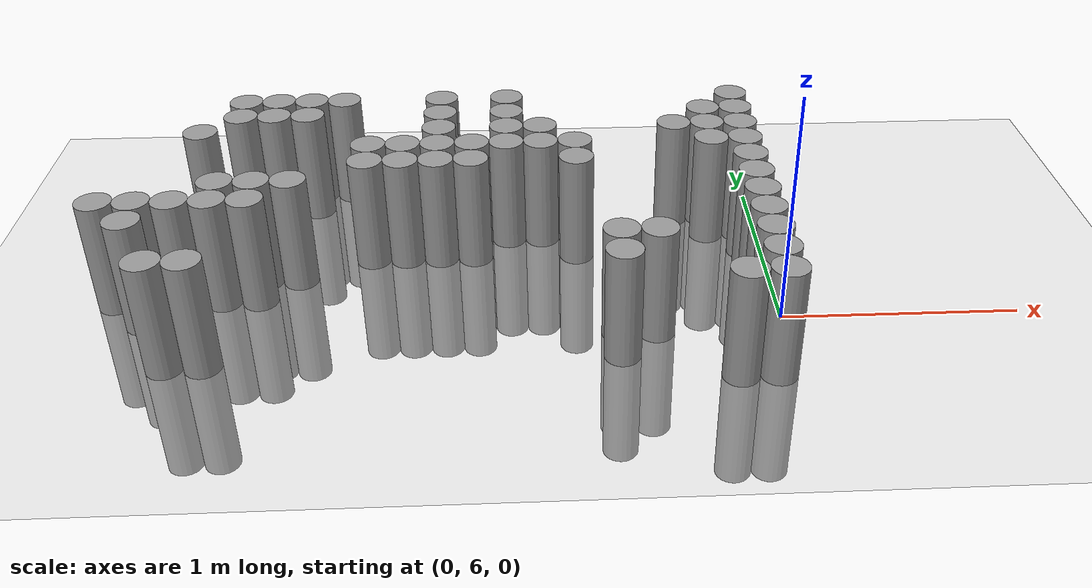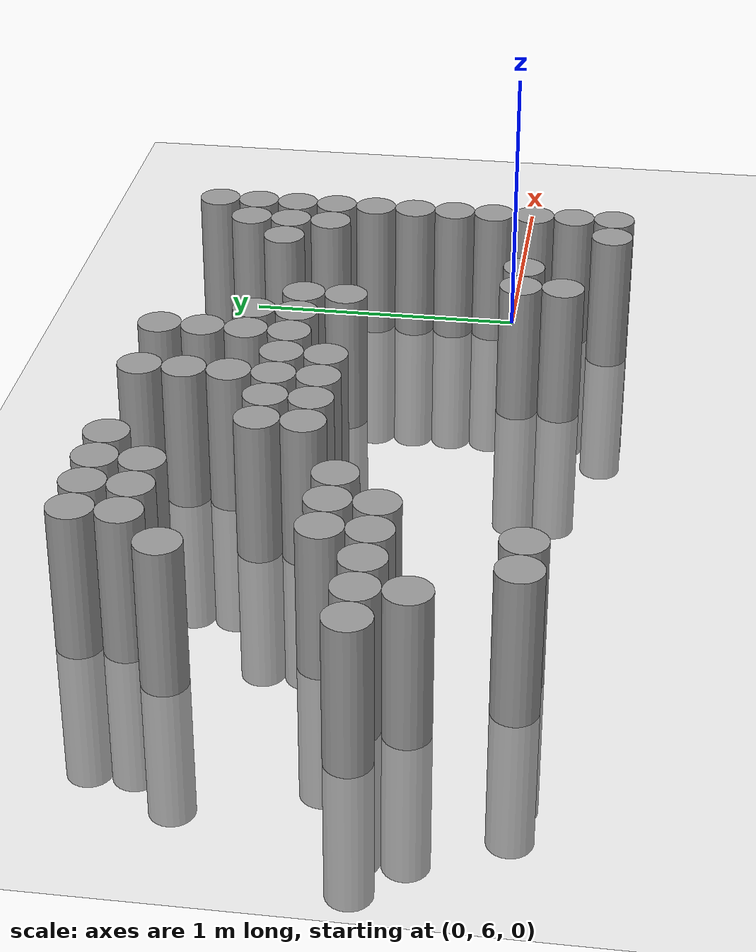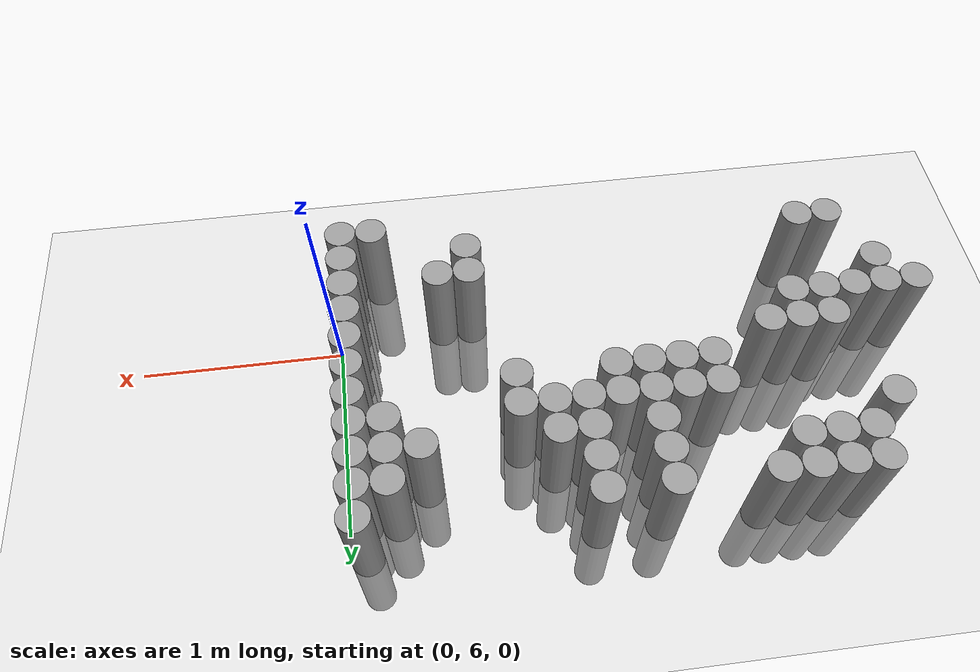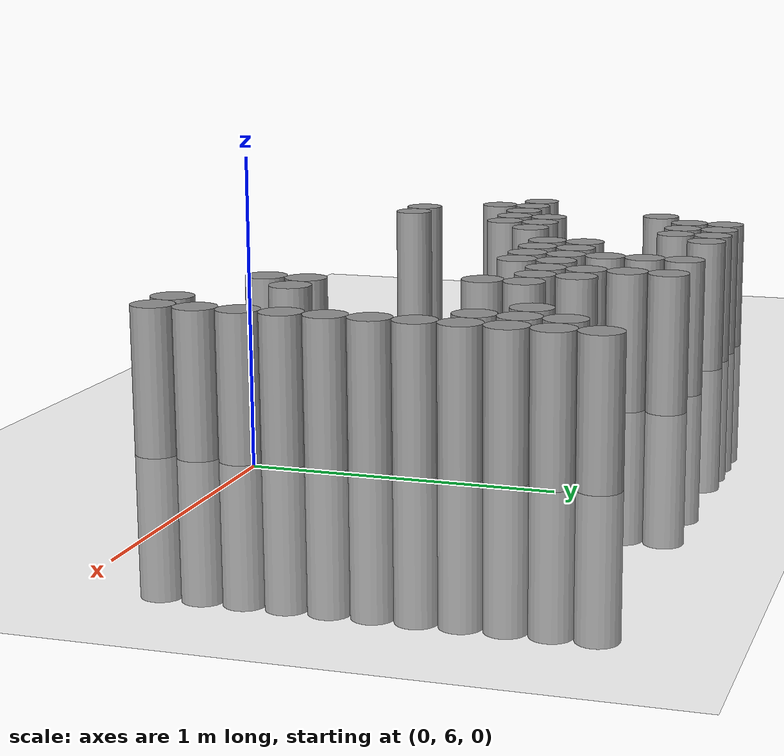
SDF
<sdf version="1.6">
 <world name="default">
  <model name="ground_plane">
   <static>1</static>
   <static>1</static>
   <link name="link">
    <collision name="collision">
     <geometry><plane><normal>0 0 1</normal><size>100 100</size></plane></geometry>
     <surface><friction><ode><mu>100</mu><mu2>50</mu2></ode></friction></surface>
    </collision>
    <visual name="visual">
     <cast_shadows>0</cast_shadows>
     <geometry><plane><normal>0 0 1</normal><size>100 100</size></plane></geometry>
     <material>
      <script><uri>file://media/materials/scripts/gazebo.material</uri><name>Gazebo/Grey</name></script>
     </material>
    </visual>
   </link>
  </model>
  <model name="unit_cylinder_160">
   <static>1</static>
   <pose>-2.775000 6.225000 0.000000 0.000000 0.000000 0.000000</pose>
   <link name="link">
    <inertial>
     <mass>1</mass>
     <inertia><ixx>0.145833</ixx><ixy>0</ixy><ixz>0</ixz><iyy>0.145833</iyy><iyz>0</iyz><izz>0.125</izz></inertia>
    </inertial>
    <collision name="collision">
     <geometry><cylinder><radius>0.075000</radius><length>1</length></cylinder></geometry>
    </collision>
    <visual name="visual">
     <geometry><cylinder><radius>0.075000</radius><length>1</length></cylinder></geometry>
     <material>
      <script><name>Gazebo/Grey</name><uri>file://media/materials/scripts/gazebo.material</uri></script>
     </material>
    </visual>
   </link>
  </model>
  <model name="unit_cylinder_161">
   <static>1</static>
   <pose>-2.625000 6.075000 0.000000 0.000000 0.000000 0.000000</pose>
   <link name="link">
    <inertial>
     <mass>1</mass>
     <inertia><ixx>0.145833</ixx><ixy>0</ixy><ixz>0</ixz><iyy>0.145833</iyy><iyz>0</iyz><izz>0.125</izz></inertia>
    </inertial>
    <collision name="collision">
     <geometry><cylinder><radius>0.075000</radius><length>1</length></cylinder></geometry>
    </collision>
    <visual name="visual">
     <geometry><cylinder><radius>0.075000</radius><length>1</length></cylinder></geometry>
     <material>
      <script><name>Gazebo/Grey</name><uri>file://media/materials/scripts/gazebo.material</uri></script>
     </material>
    </visual>
   </link>
  </model>
  <model name="unit_cylinder_162">
   <static>1</static>
   <pose>-2.625000 6.225000 0.000000 0.000000 0.000000 0.000000</pose>
   <link name="link">
    <inertial>
     <mass>1</mass>
     <inertia><ixx>0.145833</ixx><ixy>0</ixy><ixz>0</ixz><iyy>0.145833</iyy><iyz>0</iyz><izz>0.125</izz></inertia>
    </inertial>
    <collision name="collision">
     <geometry><cylinder><radius>0.075000</radius><length>1</length></cylinder></geometry>
    </collision>
    <visual name="visual">
     <geometry><cylinder><radius>0.075000</radius><length>1</length></cylinder></geometry>
     <material>
      <script><name>Gazebo/Grey</name><uri>file://media/materials/scripts/gazebo.material</uri></script>
     </material>
    </visual>
   </link>
  </model>
  <model name="unit_cylinder_164">
   <static>1</static>
   <pose>-2.475000 5.775000 0.000000 0.000000 0.000000 0.000000</pose>
   <link name="link">
    <inertial>
     <mass>1</mass>
     <inertia><ixx>0.145833</ixx><ixy>0</ixy><ixz>0</ixz><iyy>0.145833</iyy><iyz>0</iyz><izz>0.125</izz></inertia>
    </inertial>
    <collision name="collision">
     <geometry><cylinder><radius>0.075000</radius><length>1</length></cylinder></geometry>
    </collision>
    <visual name="visual">
     <geometry><cylinder><radius>0.075000</radius><length>1</length></cylinder></geometry>
     <material>
      <script><name>Gazebo/Grey</name><uri>file://media/materials/scripts/gazebo.material</uri></script>
     </material>
    </visual>
   </link>
  </model>
  <model name="unit_cylinder_165">
   <static>1</static>
   <pose>-2.475000 6.225000 0.000000 0.000000 0.000000 0.000000</pose>
   <link name="link">
    <inertial>
     <mass>1</mass>
     <inertia><ixx>0.145833</ixx><ixy>0</ixy><ixz>0</ixz><iyy>0.145833</iyy><iyz>0</iyz><izz>0.125</izz></inertia>
    </inertial>
    <collision name="collision">
     <geometry><cylinder><radius>0.075000</radius><length>1</length></cylinder></geometry>
    </collision>
    <visual name="visual">
     <geometry><cylinder><radius>0.075000</radius><length>1</length></cylinder></geometry>
     <material>
      <script><name>Gazebo/Grey</name><uri>file://media/materials/scripts/gazebo.material</uri></script>
     </material>
    </visual>
   </link>
  </model>
  <model name="unit_cylinder_166">
   <static>1</static>
   <pose>-2.475000 6.825000 0.000000 0.000000 0.000000 0.000000</pose>
   <link name="link">
    <inertial>
     <mass>1</mass>
     <inertia><ixx>0.145833</ixx><ixy>0</ixy><ixz>0</ixz><iyy>0.145833</iyy><iyz>0</iyz><izz>0.125</izz></inertia>
    </inertial>
    <collision name="collision">
     <geometry><cylinder><radius>0.075000</radius><length>1</length></cylinder></geometry>
    </collision>
    <visual name="visual">
     <geometry><cylinder><radius>0.075000</radius><length>1</length></cylinder></geometry>
     <material>
      <script><name>Gazebo/Grey</name><uri>file://media/materials/scripts/gazebo.material</uri></script>
     </material>
    </visual>
   </link>
  </model>
  <model name="unit_cylinder_167">
   <static>1</static>
   <pose>-2.325000 5.775000 0.000000 0.000000 0.000000 0.000000</pose>
   <link name="link">
    <inertial>
     <mass>1</mass>
     <inertia><ixx>0.145833</ixx><ixy>0</ixy><ixz>0</ixz><iyy>0.145833</iyy><iyz>0</iyz><izz>0.125</izz></inertia>
    </inertial>
    <collision name="collision">
     <geometry><cylinder><radius>0.075000</radius><length>1</length></cylinder></geometry>
    </collision>
    <visual name="visual">
     <geometry><cylinder><radius>0.075000</radius><length>1</length></cylinder></geometry>
     <material>
      <script><name>Gazebo/Grey</name><uri>file://media/materials/scripts/gazebo.material</uri></script>
     </material>
    </visual>
   </link>
  </model>
  <model name="unit_cylinder_168">
   <static>1</static>
   <pose>-2.325000 6.225000 0.000000 0.000000 0.000000 0.000000</pose>
   <link name="link">
    <inertial>
     <mass>1</mass>
     <inertia><ixx>0.145833</ixx><ixy>0</ixy><ixz>0</ixz><iyy>0.145833</iyy><iyz>0</iyz><izz>0.125</izz></inertia>
    </inertial>
    <collision name="collision">
     <geometry><cylinder><radius>0.075000</radius><length>1</length></cylinder></geometry>
    </collision>
    <visual name="visual">
     <geometry><cylinder><radius>0.075000</radius><length>1</length></cylinder></geometry>
     <material>
      <script><name>Gazebo/Grey</name><uri>file://media/materials/scripts/gazebo.material</uri></script>
     </material>
    </visual>
   </link>
  </model>
  <model name="unit_cylinder_169">
   <static>1</static>
   <pose>-2.325000 6.375000 0.000000 0.000000 0.000000 0.000000</pose>
   <link name="link">
    <inertial>
     <mass>1</mass>
     <inertia><ixx>0.145833</ixx><ixy>0</ixy><ixz>0</ixz><iyy>0.145833</iyy><iyz>0</iyz><izz>0.125</izz></inertia>
    </inertial>
    <collision name="collision">
     <geometry><cylinder><radius>0.075000</radius><length>1</length></cylinder></geometry>
    </collision>
    <visual name="visual">
     <geometry><cylinder><radius>0.075000</radius><length>1</length></cylinder></geometry>
     <material>
      <script><name>Gazebo/Grey</name><uri>file://media/materials/scripts/gazebo.material</uri></script>
     </material>
    </visual>
   </link>
  </model>
  <model name="unit_cylinder_170">
   <static>1</static>
   <pose>-2.325000 6.975000 0.000000 0.000000 0.000000 0.000000</pose>
   <link name="link">
    <inertial>
     <mass>1</mass>
     <inertia><ixx>0.145833</ixx><ixy>0</ixy><ixz>0</ixz><iyy>0.145833</iyy><iyz>0</iyz><izz>0.125</izz></inertia>
    </inertial>
    <collision name="collision">
     <geometry><cylinder><radius>0.075000</radius><length>1</length></cylinder></geometry>
    </collision>
    <visual name="visual">
     <geometry><cylinder><radius>0.075000</radius><length>1</length></cylinder></geometry>
     <material>
      <script><name>Gazebo/Grey</name><uri>file://media/materials/scripts/gazebo.material</uri></script>
     </material>
    </visual>
   </link>
  </model>
  <model name="unit_cylinder_171">
   <static>1</static>
   <pose>-2.325000 7.125000 0.000000 0.000000 0.000000 0.000000</pose>
   <link name="link">
    <inertial>
     <mass>1</mass>
     <inertia><ixx>0.145833</ixx><ixy>0</ixy><ixz>0</ixz><iyy>0.145833</iyy><iyz>0</iyz><izz>0.125</izz></inertia>
    </inertial>
    <collision name="collision">
     <geometry><cylinder><radius>0.075000</radius><length>1</length></cylinder></geometry>
    </collision>
    <visual name="visual">
     <geometry><cylinder><radius>0.075000</radius><length>1</length></cylinder></geometry>
     <material>
      <script><name>Gazebo/Grey</name><uri>file://media/materials/scripts/gazebo.material</uri></script>
     </material>
    </visual>
   </link>
  </model>
  <model name="unit_cylinder_173">
   <static>1</static>
   <pose>-2.175000 6.225000 0.000000 0.000000 0.000000 0.000000</pose>
   <link name="link">
    <inertial>
     <mass>1</mass>
     <inertia><ixx>0.145833</ixx><ixy>0</ixy><ixz>0</ixz><iyy>0.145833</iyy><iyz>0</iyz><izz>0.125</izz></inertia>
    </inertial>
    <collision name="collision">
     <geometry><cylinder><radius>0.075000</radius><length>1</length></cylinder></geometry>
    </collision>
    <visual name="visual">
     <geometry><cylinder><radius>0.075000</radius><length>1</length></cylinder></geometry>
     <material>
      <script><name>Gazebo/Grey</name><uri>file://media/materials/scripts/gazebo.material</uri></script>
     </material>
    </visual>
   </link>
  </model>
  <model name="unit_cylinder_174">
   <static>1</static>
   <pose>-2.175000 6.375000 0.000000 0.000000 0.000000 0.000000</pose>
   <link name="link">
    <inertial>
     <mass>1</mass>
     <inertia><ixx>0.145833</ixx><ixy>0</ixy><ixz>0</ixz><iyy>0.145833</iyy><iyz>0</iyz><izz>0.125</izz></inertia>
    </inertial>
    <collision name="collision">
     <geometry><cylinder><radius>0.075000</radius><length>1</length></cylinder></geometry>
    </collision>
    <visual name="visual">
     <geometry><cylinder><radius>0.075000</radius><length>1</length></cylinder></geometry>
     <material>
      <script><name>Gazebo/Grey</name><uri>file://media/materials/scripts/gazebo.material</uri></script>
     </material>
    </visual>
   </link>
  </model>
  <model name="unit_cylinder_175">
   <static>1</static>
   <pose>-2.175000 6.975000 0.000000 0.000000 0.000000 0.000000</pose>
   <link name="link">
    <inertial>
     <mass>1</mass>
     <inertia><ixx>0.145833</ixx><ixy>0</ixy><ixz>0</ixz><iyy>0.145833</iyy><iyz>0</iyz><izz>0.125</izz></inertia>
    </inertial>
    <collision name="collision">
     <geometry><cylinder><radius>0.075000</radius><length>1</length></cylinder></geometry>
    </collision>
    <visual name="visual">
     <geometry><cylinder><radius>0.075000</radius><length>1</length></cylinder></geometry>
     <material>
      <script><name>Gazebo/Grey</name><uri>file://media/materials/scripts/gazebo.material</uri></script>
     </material>
    </visual>
   </link>
  </model>
  <model name="unit_cylinder_176">
   <static>1</static>
   <pose>-2.175000 7.125000 0.000000 0.000000 0.000000 0.000000</pose>
   <link name="link">
    <inertial>
     <mass>1</mass>
     <inertia><ixx>0.145833</ixx><ixy>0</ixy><ixz>0</ixz><iyy>0.145833</iyy><iyz>0</iyz><izz>0.125</izz></inertia>
    </inertial>
    <collision name="collision">
     <geometry><cylinder><radius>0.075000</radius><length>1</length></cylinder></geometry>
    </collision>
    <visual name="visual">
     <geometry><cylinder><radius>0.075000</radius><length>1</length></cylinder></geometry>
     <material>
      <script><name>Gazebo/Grey</name><uri>file://media/materials/scripts/gazebo.material</uri></script>
     </material>
    </visual>
   </link>
  </model>
  <model name="unit_cylinder_178">
   <static>1</static>
   <pose>-2.025000 6.375000 0.000000 0.000000 0.000000 0.000000</pose>
   <link name="link">
    <inertial>
     <mass>1</mass>
     <inertia><ixx>0.145833</ixx><ixy>0</ixy><ixz>0</ixz><iyy>0.145833</iyy><iyz>0</iyz><izz>0.125</izz></inertia>
    </inertial>
    <collision name="collision">
     <geometry><cylinder><radius>0.075000</radius><length>1</length></cylinder></geometry>
    </collision>
    <visual name="visual">
     <geometry><cylinder><radius>0.075000</radius><length>1</length></cylinder></geometry>
     <material>
      <script><name>Gazebo/Grey</name><uri>file://media/materials/scripts/gazebo.material</uri></script>
     </material>
    </visual>
   </link>
  </model>
  <model name="unit_cylinder_179">
   <static>1</static>
   <pose>-2.025000 6.975000 0.000000 0.000000 0.000000 0.000000</pose>
   <link name="link">
    <inertial>
     <mass>1</mass>
     <inertia><ixx>0.145833</ixx><ixy>0</ixy><ixz>0</ixz><iyy>0.145833</iyy><iyz>0</iyz><izz>0.125</izz></inertia>
    </inertial>
    <collision name="collision">
     <geometry><cylinder><radius>0.075000</radius><length>1</length></cylinder></geometry>
    </collision>
    <visual name="visual">
     <geometry><cylinder><radius>0.075000</radius><length>1</length></cylinder></geometry>
     <material>
      <script><name>Gazebo/Grey</name><uri>file://media/materials/scripts/gazebo.material</uri></script>
     </material>
    </visual>
   </link>
  </model>
  <model name="unit_cylinder_180">
   <static>1</static>
   <pose>-2.025000 7.125000 0.000000 0.000000 0.000000 0.000000</pose>
   <link name="link">
    <inertial>
     <mass>1</mass>
     <inertia><ixx>0.145833</ixx><ixy>0</ixy><ixz>0</ixz><iyy>0.145833</iyy><iyz>0</iyz><izz>0.125</izz></inertia>
    </inertial>
    <collision name="collision">
     <geometry><cylinder><radius>0.075000</radius><length>1</length></cylinder></geometry>
    </collision>
    <visual name="visual">
     <geometry><cylinder><radius>0.075000</radius><length>1</length></cylinder></geometry>
     <material>
      <script><name>Gazebo/Grey</name><uri>file://media/materials/scripts/gazebo.material</uri></script>
     </material>
    </visual>
   </link>
  </model>
  <model name="unit_cylinder_184">
   <static>1</static>
   <pose>-1.875000 7.125000 0.000000 0.000000 0.000000 0.000000</pose>
   <link name="link">
    <inertial>
     <mass>1</mass>
     <inertia><ixx>0.145833</ixx><ixy>0</ixy><ixz>0</ixz><iyy>0.145833</iyy><iyz>0</iyz><izz>0.125</izz></inertia>
    </inertial>
    <collision name="collision">
     <geometry><cylinder><radius>0.075000</radius><length>1</length></cylinder></geometry>
    </collision>
    <visual name="visual">
     <geometry><cylinder><radius>0.075000</radius><length>1</length></cylinder></geometry>
     <material>
      <script><name>Gazebo/Grey</name><uri>file://media/materials/scripts/gazebo.material</uri></script>
     </material>
    </visual>
   </link>
  </model>
  <model name="unit_cylinder_188">
   <static>1</static>
   <pose>-1.725000 6.525000 0.000000 0.000000 0.000000 0.000000</pose>
   <link name="link">
    <inertial>
     <mass>1</mass>
     <inertia><ixx>0.145833</ixx><ixy>0</ixy><ixz>0</ixz><iyy>0.145833</iyy><iyz>0</iyz><izz>0.125</izz></inertia>
    </inertial>
    <collision name="collision">
     <geometry><cylinder><radius>0.075000</radius><length>1</length></cylinder></geometry>
    </collision>
    <visual name="visual">
     <geometry><cylinder><radius>0.075000</radius><length>1</length></cylinder></geometry>
     <material>
      <script><name>Gazebo/Grey</name><uri>file://media/materials/scripts/gazebo.material</uri></script>
     </material>
    </visual>
   </link>
  </model>
  <model name="unit_cylinder_189">
   <static>1</static>
   <pose>-1.725000 6.675000 0.000000 0.000000 0.000000 0.000000</pose>
   <link name="link">
    <inertial>
     <mass>1</mass>
     <inertia><ixx>0.145833</ixx><ixy>0</ixy><ixz>0</ixz><iyy>0.145833</iyy><iyz>0</iyz><izz>0.125</izz></inertia>
    </inertial>
    <collision name="collision">
     <geometry><cylinder><radius>0.075000</radius><length>1</length></cylinder></geometry>
    </collision>
    <visual name="visual">
     <geometry><cylinder><radius>0.075000</radius><length>1</length></cylinder></geometry>
     <material>
      <script><name>Gazebo/Grey</name><uri>file://media/materials/scripts/gazebo.material</uri></script>
     </material>
    </visual>
   </link>
  </model>
  <model name="unit_cylinder_193">
   <static>1</static>
   <pose>-1.575000 6.525000 0.000000 0.000000 0.000000 0.000000</pose>
   <link name="link">
    <inertial>
     <mass>1</mass>
     <inertia><ixx>0.145833</ixx><ixy>0</ixy><ixz>0</ixz><iyy>0.145833</iyy><iyz>0</iyz><izz>0.125</izz></inertia>
    </inertial>
    <collision name="collision">
     <geometry><cylinder><radius>0.075000</radius><length>1</length></cylinder></geometry>
    </collision>
    <visual name="visual">
     <geometry><cylinder><radius>0.075000</radius><length>1</length></cylinder></geometry>
     <material>
      <script><name>Gazebo/Grey</name><uri>file://media/materials/scripts/gazebo.material</uri></script>
     </material>
    </visual>
   </link>
  </model>
  <model name="unit_cylinder_194">
   <static>1</static>
   <pose>-1.575000 6.675000 0.000000 0.000000 0.000000 0.000000</pose>
   <link name="link">
    <inertial>
     <mass>1</mass>
     <inertia><ixx>0.145833</ixx><ixy>0</ixy><ixz>0</ixz><iyy>0.145833</iyy><iyz>0</iyz><izz>0.125</izz></inertia>
    </inertial>
    <collision name="collision">
     <geometry><cylinder><radius>0.075000</radius><length>1</length></cylinder></geometry>
    </collision>
    <visual name="visual">
     <geometry><cylinder><radius>0.075000</radius><length>1</length></cylinder></geometry>
     <material>
      <script><name>Gazebo/Grey</name><uri>file://media/materials/scripts/gazebo.material</uri></script>
     </material>
    </visual>
   </link>
  </model>
  <model name="unit_cylinder_200">
   <static>1</static>
   <pose>-1.425000 6.525000 0.000000 0.000000 0.000000 0.000000</pose>
   <link name="link">
    <inertial>
     <mass>1</mass>
     <inertia><ixx>0.145833</ixx><ixy>0</ixy><ixz>0</ixz><iyy>0.145833</iyy><iyz>0</iyz><izz>0.125</izz></inertia>
    </inertial>
    <collision name="collision">
     <geometry><cylinder><radius>0.075000</radius><length>1</length></cylinder></geometry>
    </collision>
    <visual name="visual">
     <geometry><cylinder><radius>0.075000</radius><length>1</length></cylinder></geometry>
     <material>
      <script><name>Gazebo/Grey</name><uri>file://media/materials/scripts/gazebo.material</uri></script>
     </material>
    </visual>
   </link>
  </model>
  <model name="unit_cylinder_201">
   <static>1</static>
   <pose>-1.425000 6.675000 0.000000 0.000000 0.000000 0.000000</pose>
   <link name="link">
    <inertial>
     <mass>1</mass>
     <inertia><ixx>0.145833</ixx><ixy>0</ixy><ixz>0</ixz><iyy>0.145833</iyy><iyz>0</iyz><izz>0.125</izz></inertia>
    </inertial>
    <collision name="collision">
     <geometry><cylinder><radius>0.075000</radius><length>1</length></cylinder></geometry>
    </collision>
    <visual name="visual">
     <geometry><cylinder><radius>0.075000</radius><length>1</length></cylinder></geometry>
     <material>
      <script><name>Gazebo/Grey</name><uri>file://media/materials/scripts/gazebo.material</uri></script>
     </material>
    </visual>
   </link>
  </model>
  <model name="unit_cylinder_202">
   <static>1</static>
   <pose>-1.425000 6.825000 0.000000 0.000000 0.000000 0.000000</pose>
   <link name="link">
    <inertial>
     <mass>1</mass>
     <inertia><ixx>0.145833</ixx><ixy>0</ixy><ixz>0</ixz><iyy>0.145833</iyy><iyz>0</iyz><izz>0.125</izz></inertia>
    </inertial>
    <collision name="collision">
     <geometry><cylinder><radius>0.075000</radius><length>1</length></cylinder></geometry>
    </collision>
    <visual name="visual">
     <geometry><cylinder><radius>0.075000</radius><length>1</length></cylinder></geometry>
     <material>
      <script><name>Gazebo/Grey</name><uri>file://media/materials/scripts/gazebo.material</uri></script>
     </material>
    </visual>
   </link>
  </model>
  <model name="unit_cylinder_203">
   <static>1</static>
   <pose>-1.425000 6.975000 0.000000 0.000000 0.000000 0.000000</pose>
   <link name="link">
    <inertial>
     <mass>1</mass>
     <inertia><ixx>0.145833</ixx><ixy>0</ixy><ixz>0</ixz><iyy>0.145833</iyy><iyz>0</iyz><izz>0.125</izz></inertia>
    </inertial>
    <collision name="collision">
     <geometry><cylinder><radius>0.075000</radius><length>1</length></cylinder></geometry>
    </collision>
    <visual name="visual">
     <geometry><cylinder><radius>0.075000</radius><length>1</length></cylinder></geometry>
     <material>
      <script><name>Gazebo/Grey</name><uri>file://media/materials/scripts/gazebo.material</uri></script>
     </material>
    </visual>
   </link>
  </model>
  <model name="unit_cylinder_204">
   <static>1</static>
   <pose>-1.425000 7.125000 0.000000 0.000000 0.000000 0.000000</pose>
   <link name="link">
    <inertial>
     <mass>1</mass>
     <inertia><ixx>0.145833</ixx><ixy>0</ixy><ixz>0</ixz><iyy>0.145833</iyy><iyz>0</iyz><izz>0.125</izz></inertia>
    </inertial>
    <collision name="collision">
     <geometry><cylinder><radius>0.075000</radius><length>1</length></cylinder></geometry>
    </collision>
    <visual name="visual">
     <geometry><cylinder><radius>0.075000</radius><length>1</length></cylinder></geometry>
     <material>
      <script><name>Gazebo/Grey</name><uri>file://media/materials/scripts/gazebo.material</uri></script>
     </material>
    </visual>
   </link>
  </model>
  <model name="unit_cylinder_213">
   <static>1</static>
   <pose>-1.275000 6.525000 0.000000 0.000000 0.000000 0.000000</pose>
   <link name="link">
    <inertial>
     <mass>1</mass>
     <inertia><ixx>0.145833</ixx><ixy>0</ixy><ixz>0</ixz><iyy>0.145833</iyy><iyz>0</iyz><izz>0.125</izz></inertia>
    </inertial>
    <collision name="collision">
     <geometry><cylinder><radius>0.075000</radius><length>1</length></cylinder></geometry>
    </collision>
    <visual name="visual">
     <geometry><cylinder><radius>0.075000</radius><length>1</length></cylinder></geometry>
     <material>
      <script><name>Gazebo/Grey</name><uri>file://media/materials/scripts/gazebo.material</uri></script>
     </material>
    </visual>
   </link>
  </model>
  <model name="unit_cylinder_214">
   <static>1</static>
   <pose>-1.275000 6.675000 0.000000 0.000000 0.000000 0.000000</pose>
   <link name="link">
    <inertial>
     <mass>1</mass>
     <inertia><ixx>0.145833</ixx><ixy>0</ixy><ixz>0</ixz><iyy>0.145833</iyy><iyz>0</iyz><izz>0.125</izz></inertia>
    </inertial>
    <collision name="collision">
     <geometry><cylinder><radius>0.075000</radius><length>1</length></cylinder></geometry>
    </collision>
    <visual name="visual">
     <geometry><cylinder><radius>0.075000</radius><length>1</length></cylinder></geometry>
     <material>
      <script><name>Gazebo/Grey</name><uri>file://media/materials/scripts/gazebo.material</uri></script>
     </material>
    </visual>
   </link>
  </model>
  <model name="unit_cylinder_220">
   <static>1</static>
   <pose>-1.125000 6.675000 0.000000 0.000000 0.000000 0.000000</pose>
   <link name="link">
    <inertial>
     <mass>1</mass>
     <inertia><ixx>0.145833</ixx><ixy>0</ixy><ixz>0</ixz><iyy>0.145833</iyy><iyz>0</iyz><izz>0.125</izz></inertia>
    </inertial>
    <collision name="collision">
     <geometry><cylinder><radius>0.075000</radius><length>1</length></cylinder></geometry>
    </collision>
    <visual name="visual">
     <geometry><cylinder><radius>0.075000</radius><length>1</length></cylinder></geometry>
     <material>
      <script><name>Gazebo/Grey</name><uri>file://media/materials/scripts/gazebo.material</uri></script>
     </material>
    </visual>
   </link>
  </model>
  <model name="unit_cylinder_221">
   <static>1</static>
   <pose>-1.125000 6.825000 0.000000 0.000000 0.000000 0.000000</pose>
   <link name="link">
    <inertial>
     <mass>1</mass>
     <inertia><ixx>0.145833</ixx><ixy>0</ixy><ixz>0</ixz><iyy>0.145833</iyy><iyz>0</iyz><izz>0.125</izz></inertia>
    </inertial>
    <collision name="collision">
     <geometry><cylinder><radius>0.075000</radius><length>1</length></cylinder></geometry>
    </collision>
    <visual name="visual">
     <geometry><cylinder><radius>0.075000</radius><length>1</length></cylinder></geometry>
     <material>
      <script><name>Gazebo/Grey</name><uri>file://media/materials/scripts/gazebo.material</uri></script>
     </material>
    </visual>
   </link>
  </model>
  <model name="unit_cylinder_222">
   <static>1</static>
   <pose>-1.125000 6.975000 0.000000 0.000000 0.000000 0.000000</pose>
   <link name="link">
    <inertial>
     <mass>1</mass>
     <inertia><ixx>0.145833</ixx><ixy>0</ixy><ixz>0</ixz><iyy>0.145833</iyy><iyz>0</iyz><izz>0.125</izz></inertia>
    </inertial>
    <collision name="collision">
     <geometry><cylinder><radius>0.075000</radius><length>1</length></cylinder></geometry>
    </collision>
    <visual name="visual">
     <geometry><cylinder><radius>0.075000</radius><length>1</length></cylinder></geometry>
     <material>
      <script><name>Gazebo/Grey</name><uri>file://media/materials/scripts/gazebo.material</uri></script>
     </material>
    </visual>
   </link>
  </model>
  <model name="unit_cylinder_223">
   <static>1</static>
   <pose>-1.125000 7.125000 0.000000 0.000000 0.000000 0.000000</pose>
   <link name="link">
    <inertial>
     <mass>1</mass>
     <inertia><ixx>0.145833</ixx><ixy>0</ixy><ixz>0</ixz><iyy>0.145833</iyy><iyz>0</iyz><izz>0.125</izz></inertia>
    </inertial>
    <collision name="collision">
     <geometry><cylinder><radius>0.075000</radius><length>1</length></cylinder></geometry>
    </collision>
    <visual name="visual">
     <geometry><cylinder><radius>0.075000</radius><length>1</length></cylinder></geometry>
     <material>
      <script><name>Gazebo/Grey</name><uri>file://media/materials/scripts/gazebo.material</uri></script>
     </material>
    </visual>
   </link>
  </model>
  <model name="unit_cylinder_229">
   <static>1</static>
   <pose>-0.975000 6.675000 0.000000 0.000000 0.000000 0.000000</pose>
   <link name="link">
    <inertial>
     <mass>1</mass>
     <inertia><ixx>0.145833</ixx><ixy>0</ixy><ixz>0</ixz><iyy>0.145833</iyy><iyz>0</iyz><izz>0.125</izz></inertia>
    </inertial>
    <collision name="collision">
     <geometry><cylinder><radius>0.075000</radius><length>1</length></cylinder></geometry>
    </collision>
    <visual name="visual">
     <geometry><cylinder><radius>0.075000</radius><length>1</length></cylinder></geometry>
     <material>
      <script><name>Gazebo/Grey</name><uri>file://media/materials/scripts/gazebo.material</uri></script>
     </material>
    </visual>
   </link>
  </model>
  <model name="unit_cylinder_230">
   <static>1</static>
   <pose>-0.975000 6.825000 0.000000 0.000000 0.000000 0.000000</pose>
   <link name="link">
    <inertial>
     <mass>1</mass>
     <inertia><ixx>0.145833</ixx><ixy>0</ixy><ixz>0</ixz><iyy>0.145833</iyy><iyz>0</iyz><izz>0.125</izz></inertia>
    </inertial>
    <collision name="collision">
     <geometry><cylinder><radius>0.075000</radius><length>1</length></cylinder></geometry>
    </collision>
    <visual name="visual">
     <geometry><cylinder><radius>0.075000</radius><length>1</length></cylinder></geometry>
     <material>
      <script><name>Gazebo/Grey</name><uri>file://media/materials/scripts/gazebo.material</uri></script>
     </material>
    </visual>
   </link>
  </model>
  <model name="unit_cylinder_237">
   <static>1</static>
   <pose>-0.825000 6.525000 0.000000 0.000000 0.000000 0.000000</pose>
   <link name="link">
    <inertial>
     <mass>1</mass>
     <inertia><ixx>0.145833</ixx><ixy>0</ixy><ixz>0</ixz><iyy>0.145833</iyy><iyz>0</iyz><izz>0.125</izz></inertia>
    </inertial>
    <collision name="collision">
     <geometry><cylinder><radius>0.075000</radius><length>1</length></cylinder></geometry>
    </collision>
    <visual name="visual">
     <geometry><cylinder><radius>0.075000</radius><length>1</length></cylinder></geometry>
     <material>
      <script><name>Gazebo/Grey</name><uri>file://media/materials/scripts/gazebo.material</uri></script>
     </material>
    </visual>
   </link>
  </model>
  <model name="unit_cylinder_238">
   <static>1</static>
   <pose>-0.825000 6.675000 0.000000 0.000000 0.000000 0.000000</pose>
   <link name="link">
    <inertial>
     <mass>1</mass>
     <inertia><ixx>0.145833</ixx><ixy>0</ixy><ixz>0</ixz><iyy>0.145833</iyy><iyz>0</iyz><izz>0.125</izz></inertia>
    </inertial>
    <collision name="collision">
     <geometry><cylinder><radius>0.075000</radius><length>1</length></cylinder></geometry>
    </collision>
    <visual name="visual">
     <geometry><cylinder><radius>0.075000</radius><length>1</length></cylinder></geometry>
     <material>
      <script><name>Gazebo/Grey</name><uri>file://media/materials/scripts/gazebo.material</uri></script>
     </material>
    </visual>
   </link>
  </model>
  <model name="unit_cylinder_244">
   <static>1</static>
   <pose>-0.675000 5.775000 0.000000 0.000000 0.000000 0.000000</pose>
   <link name="link">
    <inertial>
     <mass>1</mass>
     <inertia><ixx>0.145833</ixx><ixy>0</ixy><ixz>0</ixz><iyy>0.145833</iyy><iyz>0</iyz><izz>0.125</izz></inertia>
    </inertial>
    <collision name="collision">
     <geometry><cylinder><radius>0.075000</radius><length>1</length></cylinder></geometry>
    </collision>
    <visual name="visual">
     <geometry><cylinder><radius>0.075000</radius><length>1</length></cylinder></geometry>
     <material>
      <script><name>Gazebo/Grey</name><uri>file://media/materials/scripts/gazebo.material</uri></script>
     </material>
    </visual>
   </link>
  </model>
  <model name="unit_cylinder_245">
   <static>1</static>
   <pose>-0.675000 5.925000 0.000000 0.000000 0.000000 0.000000</pose>
   <link name="link">
    <inertial>
     <mass>1</mass>
     <inertia><ixx>0.145833</ixx><ixy>0</ixy><ixz>0</ixz><iyy>0.145833</iyy><iyz>0</iyz><izz>0.125</izz></inertia>
    </inertial>
    <collision name="collision">
     <geometry><cylinder><radius>0.075000</radius><length>1</length></cylinder></geometry>
    </collision>
    <visual name="visual">
     <geometry><cylinder><radius>0.075000</radius><length>1</length></cylinder></geometry>
     <material>
      <script><name>Gazebo/Grey</name><uri>file://media/materials/scripts/gazebo.material</uri></script>
     </material>
    </visual>
   </link>
  </model>
  <model name="unit_cylinder_250">
   <static>1</static>
   <pose>-0.525000 5.925000 0.000000 0.000000 0.000000 0.000000</pose>
   <link name="link">
    <inertial>
     <mass>1</mass>
     <inertia><ixx>0.145833</ixx><ixy>0</ixy><ixz>0</ixz><iyy>0.145833</iyy><iyz>0</iyz><izz>0.125</izz></inertia>
    </inertial>
    <collision name="collision">
     <geometry><cylinder><radius>0.075000</radius><length>1</length></cylinder></geometry>
    </collision>
    <visual name="visual">
     <geometry><cylinder><radius>0.075000</radius><length>1</length></cylinder></geometry>
     <material>
      <script><name>Gazebo/Grey</name><uri>file://media/materials/scripts/gazebo.material</uri></script>
     </material>
    </visual>
   </link>
  </model>
  <model name="unit_cylinder_253">
   <static>1</static>
   <pose>-0.375000 6.825000 0.000000 0.000000 0.000000 0.000000</pose>
   <link name="link">
    <inertial>
     <mass>1</mass>
     <inertia><ixx>0.145833</ixx><ixy>0</ixy><ixz>0</ixz><iyy>0.145833</iyy><iyz>0</iyz><izz>0.125</izz></inertia>
    </inertial>
    <collision name="collision">
     <geometry><cylinder><radius>0.075000</radius><length>1</length></cylinder></geometry>
    </collision>
    <visual name="visual">
     <geometry><cylinder><radius>0.075000</radius><length>1</length></cylinder></geometry>
     <material>
      <script><name>Gazebo/Grey</name><uri>file://media/materials/scripts/gazebo.material</uri></script>
     </material>
    </visual>
   </link>
  </model>
  <model name="unit_cylinder_254">
   <static>1</static>
   <pose>-0.225000 5.625000 0.000000 0.000000 0.000000 0.000000</pose>
   <link name="link">
    <inertial>
     <mass>1</mass>
     <inertia><ixx>0.145833</ixx><ixy>0</ixy><ixz>0</ixz><iyy>0.145833</iyy><iyz>0</iyz><izz>0.125</izz></inertia>
    </inertial>
    <collision name="collision">
     <geometry><cylinder><radius>0.075000</radius><length>1</length></cylinder></geometry>
    </collision>
    <visual name="visual">
     <geometry><cylinder><radius>0.075000</radius><length>1</length></cylinder></geometry>
     <material>
      <script><name>Gazebo/Grey</name><uri>file://media/materials/scripts/gazebo.material</uri></script>
     </material>
    </visual>
   </link>
  </model>
  <model name="unit_cylinder_255">
   <static>1</static>
   <pose>-0.225000 6.675000 0.000000 0.000000 0.000000 0.000000</pose>
   <link name="link">
    <inertial>
     <mass>1</mass>
     <inertia><ixx>0.145833</ixx><ixy>0</ixy><ixz>0</ixz><iyy>0.145833</iyy><iyz>0</iyz><izz>0.125</izz></inertia>
    </inertial>
    <collision name="collision">
     <geometry><cylinder><radius>0.075000</radius><length>1</length></cylinder></geometry>
    </collision>
    <visual name="visual">
     <geometry><cylinder><radius>0.075000</radius><length>1</length></cylinder></geometry>
     <material>
      <script><name>Gazebo/Grey</name><uri>file://media/materials/scripts/gazebo.material</uri></script>
     </material>
    </visual>
   </link>
  </model>
  <model name="unit_cylinder_256">
   <static>1</static>
   <pose>-0.225000 6.825000 0.000000 0.000000 0.000000 0.000000</pose>
   <link name="link">
    <inertial>
     <mass>1</mass>
     <inertia><ixx>0.145833</ixx><ixy>0</ixy><ixz>0</ixz><iyy>0.145833</iyy><iyz>0</iyz><izz>0.125</izz></inertia>
    </inertial>
    <collision name="collision">
     <geometry><cylinder><radius>0.075000</radius><length>1</length></cylinder></geometry>
    </collision>
    <visual name="visual">
     <geometry><cylinder><radius>0.075000</radius><length>1</length></cylinder></geometry>
     <material>
      <script><name>Gazebo/Grey</name><uri>file://media/materials/scripts/gazebo.material</uri></script>
     </material>
    </visual>
   </link>
  </model>
  <model name="unit_cylinder_257">
   <static>1</static>
   <pose>-0.225000 6.975000 0.000000 0.000000 0.000000 0.000000</pose>
   <link name="link">
    <inertial>
     <mass>1</mass>
     <inertia><ixx>0.145833</ixx><ixy>0</ixy><ixz>0</ixz><iyy>0.145833</iyy><iyz>0</iyz><izz>0.125</izz></inertia>
    </inertial>
    <collision name="collision">
     <geometry><cylinder><radius>0.075000</radius><length>1</length></cylinder></geometry>
    </collision>
    <visual name="visual">
     <geometry><cylinder><radius>0.075000</radius><length>1</length></cylinder></geometry>
     <material>
      <script><name>Gazebo/Grey</name><uri>file://media/materials/scripts/gazebo.material</uri></script>
     </material>
    </visual>
   </link>
  </model>
  <model name="unit_cylinder_262">
   <static>1</static>
   <pose>-0.075000 5.625000 0.000000 0.000000 0.000000 0.000000</pose>
   <link name="link">
    <inertial>
     <mass>1</mass>
     <inertia><ixx>0.145833</ixx><ixy>0</ixy><ixz>0</ixz><iyy>0.145833</iyy><iyz>0</iyz><izz>0.125</izz></inertia>
    </inertial>
    <collision name="collision">
     <geometry><cylinder><radius>0.075000</radius><length>1</length></cylinder></geometry>
    </collision>
    <visual name="visual">
     <geometry><cylinder><radius>0.075000</radius><length>1</length></cylinder></geometry>
     <material>
      <script><name>Gazebo/Grey</name><uri>file://media/materials/scripts/gazebo.material</uri></script>
     </material>
    </visual>
   </link>
  </model>
  <model name="unit_cylinder_263">
   <static>1</static>
   <pose>-0.075000 5.775000 0.000000 0.000000 0.000000 0.000000</pose>
   <link name="link">
    <inertial>
     <mass>1</mass>
     <inertia><ixx>0.145833</ixx><ixy>0</ixy><ixz>0</ixz><iyy>0.145833</iyy><iyz>0</iyz><izz>0.125</izz></inertia>
    </inertial>
    <collision name="collision">
     <geometry><cylinder><radius>0.075000</radius><length>1</length></cylinder></geometry>
    </collision>
    <visual name="visual">
     <geometry><cylinder><radius>0.075000</radius><length>1</length></cylinder></geometry>
     <material>
      <script><name>Gazebo/Grey</name><uri>file://media/materials/scripts/gazebo.material</uri></script>
     </material>
    </visual>
   </link>
  </model>
  <model name="unit_cylinder_264">
   <static>1</static>
   <pose>-0.075000 5.925000 0.000000 0.000000 0.000000 0.000000</pose>
   <link name="link">
    <inertial>
     <mass>1</mass>
     <inertia><ixx>0.145833</ixx><ixy>0</ixy><ixz>0</ixz><iyy>0.145833</iyy><iyz>0</iyz><izz>0.125</izz></inertia>
    </inertial>
    <collision name="collision">
     <geometry><cylinder><radius>0.075000</radius><length>1</length></cylinder></geometry>
    </collision>
    <visual name="visual">
     <geometry><cylinder><radius>0.075000</radius><length>1</length></cylinder></geometry>
     <material>
      <script><name>Gazebo/Grey</name><uri>file://media/materials/scripts/gazebo.material</uri></script>
     </material>
    </visual>
   </link>
  </model>
  <model name="unit_cylinder_265">
   <static>1</static>
   <pose>-0.075000 6.075000 0.000000 0.000000 0.000000 0.000000</pose>
   <link name="link">
    <inertial>
     <mass>1</mass>
     <inertia><ixx>0.145833</ixx><ixy>0</ixy><ixz>0</ixz><iyy>0.145833</iyy><iyz>0</iyz><izz>0.125</izz></inertia>
    </inertial>
    <collision name="collision">
     <geometry><cylinder><radius>0.075000</radius><length>1</length></cylinder></geometry>
    </collision>
    <visual name="visual">
     <geometry><cylinder><radius>0.075000</radius><length>1</length></cylinder></geometry>
     <material>
      <script><name>Gazebo/Grey</name><uri>file://media/materials/scripts/gazebo.material</uri></script>
     </material>
    </visual>
   </link>
  </model>
  <model name="unit_cylinder_266">
   <static>1</static>
   <pose>-0.075000 6.225000 0.000000 0.000000 0.000000 0.000000</pose>
   <link name="link">
    <inertial>
     <mass>1</mass>
     <inertia><ixx>0.145833</ixx><ixy>0</ixy><ixz>0</ixz><iyy>0.145833</iyy><iyz>0</iyz><izz>0.125</izz></inertia>
    </inertial>
    <collision name="collision">
     <geometry><cylinder><radius>0.075000</radius><length>1</length></cylinder></geometry>
    </collision>
    <visual name="visual">
     <geometry><cylinder><radius>0.075000</radius><length>1</length></cylinder></geometry>
     <material>
      <script><name>Gazebo/Grey</name><uri>file://media/materials/scripts/gazebo.material</uri></script>
     </material>
    </visual>
   </link>
  </model>
  <model name="unit_cylinder_267">
   <static>1</static>
   <pose>-0.075000 6.375000 0.000000 0.000000 0.000000 0.000000</pose>
   <link name="link">
    <inertial>
     <mass>1</mass>
     <inertia><ixx>0.145833</ixx><ixy>0</ixy><ixz>0</ixz><iyy>0.145833</iyy><iyz>0</iyz><izz>0.125</izz></inertia>
    </inertial>
    <collision name="collision">
     <geometry><cylinder><radius>0.075000</radius><length>1</length></cylinder></geometry>
    </collision>
    <visual name="visual">
     <geometry><cylinder><radius>0.075000</radius><length>1</length></cylinder></geometry>
     <material>
      <script><name>Gazebo/Grey</name><uri>file://media/materials/scripts/gazebo.material</uri></script>
     </material>
    </visual>
   </link>
  </model>
  <model name="unit_cylinder_268">
   <static>1</static>
   <pose>-0.075000 6.525000 0.000000 0.000000 0.000000 0.000000</pose>
   <link name="link">
    <inertial>
     <mass>1</mass>
     <inertia><ixx>0.145833</ixx><ixy>0</ixy><ixz>0</ixz><iyy>0.145833</iyy><iyz>0</iyz><izz>0.125</izz></inertia>
    </inertial>
    <collision name="collision">
     <geometry><cylinder><radius>0.075000</radius><length>1</length></cylinder></geometry>
    </collision>
    <visual name="visual">
     <geometry><cylinder><radius>0.075000</radius><length>1</length></cylinder></geometry>
     <material>
      <script><name>Gazebo/Grey</name><uri>file://media/materials/scripts/gazebo.material</uri></script>
     </material>
    </visual>
   </link>
  </model>
  <model name="unit_cylinder_269">
   <static>1</static>
   <pose>-0.075000 6.675000 0.000000 0.000000 0.000000 0.000000</pose>
   <link name="link">
    <inertial>
     <mass>1</mass>
     <inertia><ixx>0.145833</ixx><ixy>0</ixy><ixz>0</ixz><iyy>0.145833</iyy><iyz>0</iyz><izz>0.125</izz></inertia>
    </inertial>
    <collision name="collision">
     <geometry><cylinder><radius>0.075000</radius><length>1</length></cylinder></geometry>
    </collision>
    <visual name="visual">
     <geometry><cylinder><radius>0.075000</radius><length>1</length></cylinder></geometry>
     <material>
      <script><name>Gazebo/Grey</name><uri>file://media/materials/scripts/gazebo.material</uri></script>
     </material>
    </visual>
   </link>
  </model>
  <model name="unit_cylinder_270">
   <static>1</static>
   <pose>-0.075000 6.825000 0.000000 0.000000 0.000000 0.000000</pose>
   <link name="link">
    <inertial>
     <mass>1</mass>
     <inertia><ixx>0.145833</ixx><ixy>0</ixy><ixz>0</ixz><iyy>0.145833</iyy><iyz>0</iyz><izz>0.125</izz></inertia>
    </inertial>
    <collision name="collision">
     <geometry><cylinder><radius>0.075000</radius><length>1</length></cylinder></geometry>
    </collision>
    <visual name="visual">
     <geometry><cylinder><radius>0.075000</radius><length>1</length></cylinder></geometry>
     <material>
      <script><name>Gazebo/Grey</name><uri>file://media/materials/scripts/gazebo.material</uri></script>
     </material>
    </visual>
   </link>
  </model>
  <model name="unit_cylinder_271">
   <static>1</static>
   <pose>-0.075000 6.975000 0.000000 0.000000 0.000000 0.000000</pose>
   <link name="link">
    <inertial>
     <mass>1</mass>
     <inertia><ixx>0.145833</ixx><ixy>0</ixy><ixz>0</ixz><iyy>0.145833</iyy><iyz>0</iyz><izz>0.125</izz></inertia>
    </inertial>
    <collision name="collision">
     <geometry><cylinder><radius>0.075000</radius><length>1</length></cylinder></geometry>
    </collision>
    <visual name="visual">
     <geometry><cylinder><radius>0.075000</radius><length>1</length></cylinder></geometry>
     <material>
      <script><name>Gazebo/Grey</name><uri>file://media/materials/scripts/gazebo.material</uri></script>
     </material>
    </visual>
   </link>
  </model>
  <model name="unit_cylinder_272">
   <static>1</static>
   <pose>-0.075000 7.125000 0.000000 0.000000 0.000000 0.000000</pose>
   <link name="link">
    <inertial>
     <mass>1</mass>
     <inertia><ixx>0.145833</ixx><ixy>0</ixy><ixz>0</ixz><iyy>0.145833</iyy><iyz>0</iyz><izz>0.125</izz></inertia>
    </inertial>
    <collision name="collision">
     <geometry><cylinder><radius>0.075000</radius><length>1</length></cylinder></geometry>
    </collision>
    <visual name="visual">
     <geometry><cylinder><radius>0.075000</radius><length>1</length></cylinder></geometry>
     <material>
      <script><name>Gazebo/Grey</name><uri>file://media/materials/scripts/gazebo.material</uri></script>
     </material>
    </visual>
   </link>
  </model>
 </world>
</sdf>
